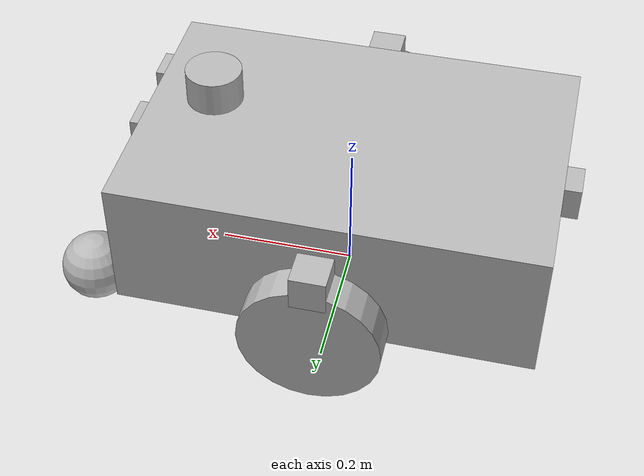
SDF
<?xml version="1.0"?>
<sdf version="1.6">
  <!-- Modül 11 Sürümü: 5 Noktadan Destekli Denge Tasarımı (2 Ön Caster + 1 Arka Caster) + RGB-D Sensörlü Nihai Model -->
  <model name="ika_rover">

    <!-- GÖVDE -->
    <link name="base_link">
      <pose>0 0 0.15 0 0 0</pose>
      <inertial>
        <mass>5.0</mass>
        <inertia>
          <ixx>0.1</ixx><iyy>0.1</iyy><izz>0.1</izz>
          <ixy>0</ixy><ixz>0</ixz><iyz>0</iyz>
        </inertia>
      </inertial>
      <collision name="base_collision">
        <geometry><box><size>0.6 0.4 0.2</size></box></geometry>
      </collision>
      <visual name="base_visual">
        <geometry><box><size>0.6 0.4 0.2</size></box></geometry>
      </visual>
    </link>

    <!-- SOL TEKER -->
    <link name="left_wheel">
      <pose>0 0.25 0.1 1.5708 0 0</pose>
      <inertial>
        <mass>0.5</mass>
        <inertia>
          <ixx>0.01</ixx><iyy>0.01</iyy><izz>0.01</izz>
          <ixy>0</ixy><ixz>0</ixz><iyz>0</iyz>
        </inertia>
      </inertial>
      <collision name="left_wheel_collision">
        <geometry><cylinder><radius>0.1</radius><length>0.05</length></cylinder></geometry>
        <surface><friction><ode><mu>1.0</mu><mu2>1.0</mu2></ode></friction></surface>
      </collision>
      <visual name="left_wheel_visual">
        <geometry><cylinder><radius>0.1</radius><length>0.05</length></cylinder></geometry>
      </visual>
    </link>

    <!-- SAĞ TEKER -->
    <link name="right_wheel">
      <pose>0 -0.25 0.1 1.5708 0 0</pose>
      <inertial>
        <mass>0.5</mass>
        <inertia>
          <ixx>0.01</ixx><iyy>0.01</iyy><izz>0.01</izz>
          <ixy>0</ixy><ixz>0</ixz><iyz>0</iyz>
        </inertia>
      </inertial>
      <collision name="right_wheel_collision">
        <geometry><cylinder><radius>0.1</radius><length>0.05</length></cylinder></geometry>
        <surface><friction><ode><mu>1.0</mu><mu2>1.0</mu2></ode></friction></surface>
      </collision>
      <visual name="right_wheel_visual">
        <geometry><cylinder><radius>0.1</radius><length>0.05</length></cylinder></geometry>
      </visual>
    </link>

    <!-- ARKA DENGE TEKERİ (CASTER) -->
    <link name="caster_wheel">
      <pose>-0.2 0 0.05 0 0 0</pose>
      <inertial>
        <mass>0.2</mass>
        <inertia>
          <ixx>0.0001</ixx><iyy>0.0001</iyy><izz>0.0001</izz>
          <ixy>0</ixy><ixz>0</ixz><iyz>0</iyz>
        </inertia>
      </inertial>
      <collision name="caster_collision">
        <geometry><sphere><radius>0.05</radius></sphere></geometry>
        <surface><friction><ode><mu>0</mu><mu2>0</mu2></ode></friction></surface>
      </collision>
      <visual name="caster_visual">
        <geometry><sphere><radius>0.05</radius></sphere></geometry>
      </visual>
    </link>

    <!-- ÖN DENGE TEKERLERİ (MODÜL 11 FİZİK DÜZELTMESİ) -->
    <link name="front_caster_left">
      <pose>0.35 0.15 0.05 0 0 0</pose>
      <inertial>
        <mass>0.2</mass>
        <inertia>
          <ixx>0.0001</ixx><iyy>0.0001</iyy><izz>0.0001</izz>
          <ixy>0</ixy><ixz>0</ixz><iyz>0</iyz>
        </inertia>
      </inertial>
      <collision name="front_caster_left_collision">
        <geometry><sphere><radius>0.05</radius></sphere></geometry>
        <surface><friction><ode><mu>0</mu><mu2>0</mu2></ode></friction></surface>
      </collision>
      <visual name="front_caster_left_visual">
        <geometry><sphere><radius>0.05</radius></sphere></geometry>
      </visual>
    </link>

    <link name="front_caster_right">
      <pose>0.35 -0.15 0.05 0 0 0</pose>
      <inertial>
        <mass>0.2</mass>
        <inertia>
          <ixx>0.0001</ixx><iyy>0.0001</iyy><izz>0.0001</izz>
          <ixy>0</ixy><ixz>0</ixz><iyz>0</iyz>
        </inertia>
      </inertial>
      <collision name="front_caster_right_collision">
        <geometry><sphere><radius>0.05</radius></sphere></geometry>
        <surface><friction><ode><mu>0</mu><mu2>0</mu2></ode></friction></surface>
      </collision>
      <visual name="front_caster_right_visual">
        <geometry><sphere><radius>0.05</radius></sphere></geometry>
      </visual>
    </link>

    <!-- EKLEMLER (JOINTS) -->
    <joint name="left_wheel_joint" type="revolute">
      <parent>base_link</parent>
      <child>left_wheel</child>
      <axis>
        <xyz>0 1 0</xyz>
        <use_parent_model_frame>1</use_parent_model_frame>
        <limit><lower>-1e+16</lower><upper>1e+16</upper></limit>
      </axis>
    </joint>

    <joint name="right_wheel_joint" type="revolute">
      <parent>base_link</parent>
      <child>right_wheel</child>
      <axis>
        <xyz>0 1 0</xyz>
        <use_parent_model_frame>1</use_parent_model_frame>
        <limit><lower>-1e+16</lower><upper>1e+16</upper></limit>
      </axis>
    </joint>

    <joint name="caster_joint" type="fixed">
      <parent>base_link</parent>
      <child>caster_wheel</child>
    </joint>

    <joint name="front_caster_left_joint" type="fixed">
      <parent>base_link</parent>
      <child>front_caster_left</child>
    </joint>

    <joint name="front_caster_right_joint" type="fixed">
      <parent>base_link</parent>
      <child>front_caster_right</child>
    </joint>

    <!-- IMU SENSÖRÜ -->
    <link name="imu_link">
      <pose>0 0 0.25 0 0 0</pose>
      <inertial>
        <mass>0.015</mass>
        <inertia><ixx>1e-05</ixx><ixy>0</ixy><ixz>0</ixz><iyy>1e-05</iyy><iyz>0</iyz><izz>1e-05</izz></inertia>
      </inertial>
      <sensor name="imu_sensor" type="imu">
        <always_on>1</always_on>
        <update_rate>50.0</update_rate>
      </sensor>
    </link>
    <joint name="imu_joint" type="fixed">
      <parent>base_link</parent>
      <child>imu_link</child>
    </joint>

    <!-- 2D LIDAR SENSÖRÜ -->
    <link name="lidar_link">
      <pose>0.2 0 0.3 0 0 0</pose>
      <inertial>
        <mass>0.1</mass>
        <inertia><ixx>0.0001</ixx><iyy>0.0001</iyy><izz>0.0001</izz><ixy>0</ixy><ixz>0</ixz><iyz>0</iyz></inertia>
      </inertial>
      <visual name="lidar_visual">
        <geometry><cylinder><radius>0.04</radius><length>0.05</length></cylinder></geometry>
      </visual>
      <sensor name="lidar_sensor" type="ray">
        <always_on>true</always_on>
        <update_rate>10</update_rate>
        <ray>
          <scan>
            <horizontal>
              <samples>360</samples>
              <resolution>1</resolution>
              <min_angle>-3.14159</min_angle>
              <max_angle>3.14159</max_angle>
            </horizontal>
          </scan>
          <range><min>0.12</min><max>10.0</max><resolution>0.015</resolution></range>
        </ray>
        <plugin name="lidar_plugin" filename="libgazebo_ros_ray_sensor.so">
          <ros><namespace>/</namespace><remapping>~/out:=scan</remapping></ros>
          <output_type>sensor_msgs/LaserScan</output_type>
          <frame_name>lidar_link</frame_name>
        </plugin>
      </sensor>
    </link>
    <joint name="lidar_joint" type="fixed">
      <parent>base_link</parent>
      <child>lidar_link</child>
    </joint>

    <!-- 1. KAMERA: ÖN SOL (ANA RGB + NATIVE DEPTH SENSÖRÜ) -->
    <link name="camera_link">
      <pose>0.3 0 0.2 0 0 0</pose>
      <inertial>
        <mass>0.05</mass>
        <inertia><ixx>0.0001</ixx><iyy>0.0001</iyy><izz>0.0001</izz><ixy>0</ixy><ixz>0</ixz><iyz>0</iyz></inertia>
      </inertial>
      <visual name="camera_visual"><geometry><box><size>0.05 0.05 0.05</size></box></geometry></visual>

      <!-- RGB Renkli Akış -->
      <sensor name="camera_sensor" type="camera">
        <always_on>true</always_on>
        <update_rate>30</update_rate>
        <camera>
          <horizontal_fov>1.396</horizontal_fov>
          <image><width>640</width><height>480</height><format>R8G8B8</format></image>
          <clip><near>0.05</near><far>15</far></clip>
        </camera>
        <plugin name="camera_plugin" filename="libgazebo_ros_camera.so">
          <ros><namespace>/ika_rover</namespace></ros>
          <frame_name>camera_optical_frame</frame_name>
        </plugin>
      </sensor>

      <!-- Native Derinlik Sensörü (Modül 10 OctoMap Haritalama İçin) -->
      <sensor name="depth_camera_sensor" type="depth">
        <always_on>true</always_on>
        <update_rate>5</update_rate>
        <camera>
          <horizontal_fov>1.396</horizontal_fov>
          <image><width>320</width><height>240</height><format>R8G8B8</format></image>
          <depth_camera/>
          <clip><near>0.25</near><far>8.0</far></clip>
        </camera>
        <plugin name="depth_camera_plugin" filename="libgazebo_ros_camera.so">
          <ros><namespace>/ika_rover</namespace></ros>
          <camera_name>depth_camera</camera_name>
          <frame_name>camera_optical_frame</frame_name>
          <min_depth>0.25</min_depth>
          <max_depth>8.0</max_depth>
        </plugin>
      </sensor>
    </link>
    <joint name="camera_joint" type="fixed">
      <parent>base_link</parent>
      <child>camera_link</child>
    </joint>

    <!-- 2. KAMERA: ÖN SAĞ (STEREO ÇİFT, baseline = 12cm) -->
    <link name="right_camera_link">
      <pose>0.3 -0.12 0.2 0 0 0</pose>
      <inertial>
        <mass>0.05</mass>
        <inertia><ixx>0.0001</ixx><iyy>0.0001</iyy><izz>0.0001</izz><ixy>0</ixy><ixz>0</ixz><iyz>0</iyz></inertia>
      </inertial>
      <visual name="right_camera_visual"><geometry><box><size>0.05 0.05 0.05</size></box></geometry></visual>
      <sensor name="right_camera_sensor" type="camera">
        <always_on>true</always_on>
        <update_rate>30</update_rate>
        <camera>
          <horizontal_fov>1.396</horizontal_fov>
          <image><width>640</width><height>480</height><format>R8G8B8</format></image>
          <clip><near>0.05</near><far>15</far></clip>
        </camera>
        <plugin name="right_camera_plugin" filename="libgazebo_ros_camera.so">
          <ros><namespace>/ika_rover</namespace></ros>
          <frame_name>right_camera_optical_frame</frame_name>
        </plugin>
      </sensor>
    </link>
    <joint name="right_camera_joint" type="fixed">
      <parent>base_link</parent>
      <child>right_camera_link</child>
    </joint>

    <!-- 3. KAMERA: SAĞ MONO (yaw = -1.5708) -->
    <link name="side_right_camera_link">
      <pose>0 -0.25 0.2 0 0 -1.5708</pose>
      <inertial>
        <mass>0.05</mass>
        <inertia><ixx>0.0001</ixx><iyy>0.0001</iyy><izz>0.0001</izz><ixy>0</ixy><ixz>0</ixz><iyz>0</iyz></inertia>
      </inertial>
      <visual name="side_right_camera_visual"><geometry><box><size>0.05 0.05 0.05</size></box></geometry></visual>
      <sensor name="side_right_camera_sensor" type="camera">
        <always_on>true</always_on>
        <update_rate>30</update_rate>
        <camera>
          <horizontal_fov>1.396</horizontal_fov>
          <image><width>640</width><height>480</height><format>R8G8B8</format></image>
          <clip><near>0.05</near><far>15</far></clip>
        </camera>
        <plugin name="side_right_camera_plugin" filename="libgazebo_ros_camera.so">
          <ros><namespace>/ika_rover</namespace></ros>
          <frame_name>side_right_camera_optical_frame</frame_name>
        </plugin>
      </sensor>
    </link>
    <joint name="side_right_camera_joint" type="fixed">
      <parent>base_link</parent>
      <child>side_right_camera_link</child>
    </joint>

    <!-- 4. KAMERA: SOL MONO (yaw = 1.5708) -->
    <link name="side_left_camera_link">
      <pose>0 0.25 0.2 0 0 1.5708</pose>
      <inertial>
        <mass>0.05</mass>
        <inertia><ixx>0.0001</ixx><iyy>0.0001</iyy><izz>0.0001</izz><ixy>0</ixy><ixz>0</ixz><iyz>0</iyz></inertia>
      </inertial>
      <visual name="side_left_camera_visual"><geometry><box><size>0.05 0.05 0.05</size></box></geometry></visual>
      <sensor name="side_left_camera_sensor" type="camera">
        <always_on>true</always_on>
        <update_rate>30</update_rate>
        <camera>
          <horizontal_fov>1.396</horizontal_fov>
          <image><width>640</width><height>480</height><format>R8G8B8</format></image>
          <clip><near>0.05</near><far>15</far></clip>
        </camera>
        <plugin name="side_left_camera_plugin" filename="libgazebo_ros_camera.so">
          <ros><namespace>/ika_rover</namespace></ros>
          <frame_name>side_left_camera_optical_frame</frame_name>
        </plugin>
      </sensor>
    </link>
    <joint name="side_left_camera_joint" type="fixed">
      <parent>base_link</parent>
      <child>side_left_camera_link</child>
    </joint>

    <!-- 5. KAMERA: ARKA MONO (yaw = 3.14159) -->
    <link name="rear_camera_link">
      <pose>-0.3 0 0.2 0 0 3.14159</pose>
      <inertial>
        <mass>0.05</mass>
        <inertia><ixx>0.0001</ixx><iyy>0.0001</iyy><izz>0.0001</izz><ixy>0</ixy><ixz>0</ixz><iyz>0</iyz></inertia>
      </inertial>
      <visual name="rear_camera_visual"><geometry><box><size>0.05 0.05 0.05</size></box></geometry></visual>
      <sensor name="rear_camera_sensor" type="camera">
        <always_on>true</always_on>
        <update_rate>30</update_rate>
        <camera>
          <horizontal_fov>1.396</horizontal_fov>
          <image><width>640</width><height>480</height><format>R8G8B8</format></image>
          <clip><near>0.05</near><far>15</far></clip>
        </camera>
        <plugin name="rear_camera_plugin" filename="libgazebo_ros_camera.so">
          <ros><namespace>/ika_rover</namespace></ros>
          <frame_name>rear_camera_optical_frame</frame_name>
        </plugin>
      </sensor>
    </link>
    <joint name="rear_camera_joint" type="fixed">
      <parent>base_link</parent>
      <child>rear_camera_link</child>
    </joint>

    <!-- DİFERANSİYEL SÜRÜŞ PLUGINI -->
    <plugin name="diff_drive" filename="libgazebo_ros_diff_drive.so">
      <ros><namespace>/</namespace></ros>
      <update_rate>30</update_rate>
      <left_joint>left_wheel_joint</left_joint>
      <right_joint>right_wheel_joint</right_joint>
      <wheel_separation>0.5</wheel_separation>
      <wheel_diameter>0.2</wheel_diameter>
      <max_wheel_torque>20</max_wheel_torque>
      <max_wheel_acceleration>1.0</max_wheel_acceleration>
      <command_topic>cmd_vel</command_topic>
      <odometry_topic>odom</odometry_topic>
      <odometry_frame>odom</odometry_frame>
      <robot_base_frame>base_link</robot_base_frame>
      <!-- Odometry Source: 1 = WORLD (Gazebo yer gerçeği pozundan türetilen kaymasız referans) -->
      <!-- 0 = ENCODER seçilirse tekerlek dönüş eklemlerinden entegre edilir, patinaj ve kayma simüle edilir -->
      <odometry_source>1</odometry_source>
      <publish_odom>true</publish_odom>
      <publish_odom_tf>true</publish_odom_tf>
      <publish_wheel_tf>false</publish_wheel_tf>
    </plugin>

  </model>
</sdf>
